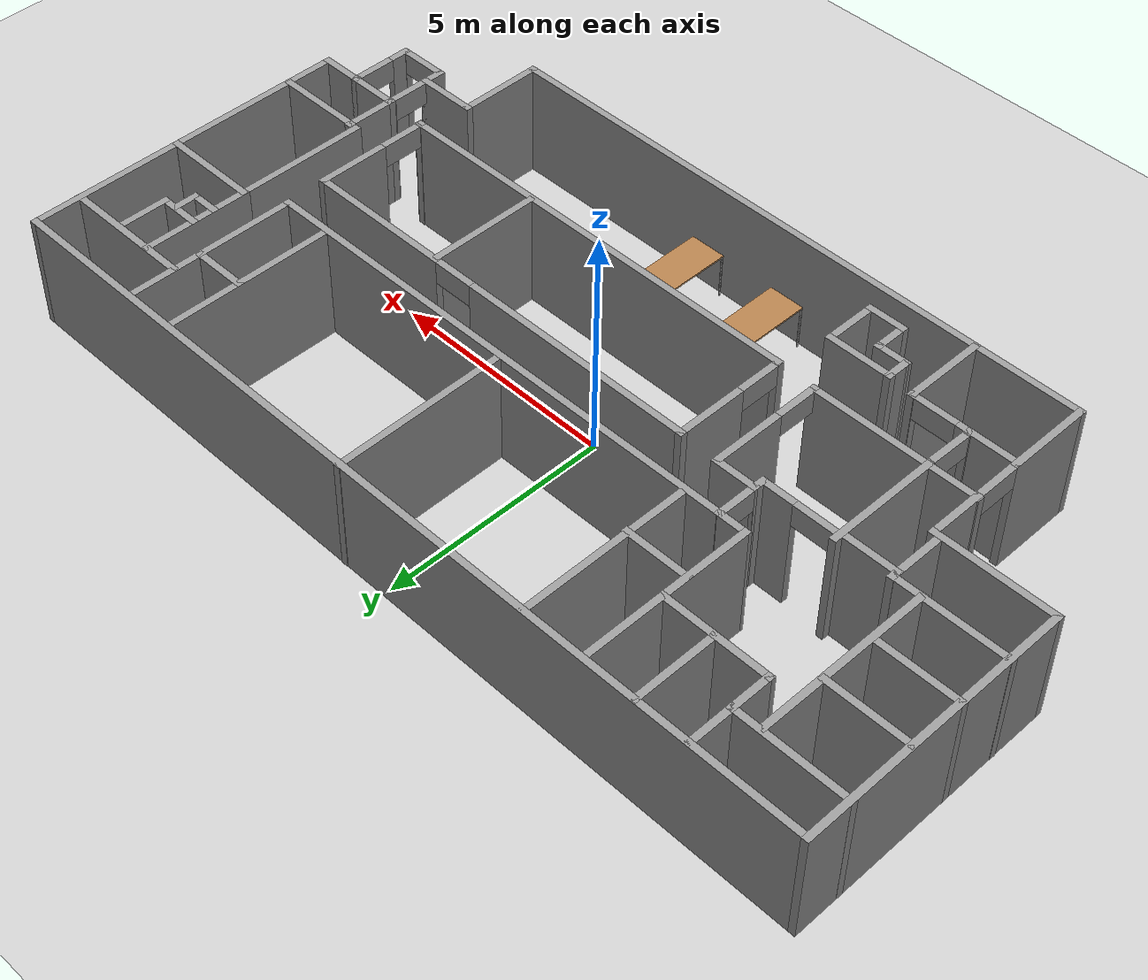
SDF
<sdf version="1.6">
 <world name="default">
  <light name="sun" type="directional">
   <pose>0 0 10 0 -0 0</pose>
   <diffuse>0.8 0.8 0.8 1</diffuse>
   <specular>0.1 0.1 0.1 1</specular>
   <attenuation>
    <range>1000</range>
    <constant>0.9</constant>
    <linear>0.01</linear>
    <quadratic>0.001</quadratic>
   </attenuation>
   <direction>-0.5 0.5 -1</direction>
  </light>
  <model name="ground_plane">
   <static>1</static>
   <link name="link">
    <collision name="collision">
     <geometry><plane><normal>0 0 1</normal><size>100 100</size></plane></geometry>
     <surface><friction><ode><mu>100</mu><mu2>50</mu2></ode></friction></surface>
    </collision>
    <visual name="visual">
     <cast_shadows>0</cast_shadows>
     <geometry><plane><normal>0 0 1</normal><size>100 100</size></plane></geometry>
     <material>
      <script><uri>file://media/materials/scripts/gazebo.material</uri><name>Gazebo/Grey</name></script>
     </material>
    </visual>
   </link>
  </model>
  <gravity>0 0 -9.8</gravity>
  <magnetic_field>6e-06 2.3e-05 -4.2e-05</magnetic_field>
  <atmosphere type="adiabatic"/>
  <physics name="default_physics" default="0" type="ode">
   <max_step_size>0.001</max_step_size>
   <real_time_factor>1</real_time_factor>
   <real_time_update_rate>1000</real_time_update_rate>
  </physics>
  <scene><ambient>0.4 0.4 0.4 1</ambient><background>0.7 0.7 0.7 1</background><shadows>1</shadows></scene>
  <spherical_coordinates>
   <surface_model>EARTH_WGS84</surface_model>
   <latitude_deg>0</latitude_deg>
   <longitude_deg>0</longitude_deg>
   <elevation>0</elevation>
   <heading_deg>0</heading_deg>
  </spherical_coordinates>
  <model name="dehf1">
   <pose>0.161285 0.129327 0 0 -0 0</pose>
   <link name="Wall_100">
    <pose>2.05121 0.314345 0 0 -0 0</pose>
    <visual name="Wall_100_Visual_0">
     <pose>-2.10558 0 1.25 0 -0 0</pose>
     <geometry><box><size>5.29904 0.15 2.5</size></box></geometry>
     <material>
      <script><uri>file://media/materials/scripts/gazebo.material</uri><name>Gazebo/Grey</name></script>
      <ambient>1 1 1 1</ambient>
     </material>
    </visual>
    <collision name="Wall_100_Collision_0">
     <geometry><box><size>5.29904 0.15 2.5</size></box></geometry>
     <pose>-2.10558 0 1.25 0 -0 0</pose>
    </collision>
    <visual name="Wall_100_Visual_1">
     <pose>3.09952 0 1.25 0 -0 0</pose>
     <geometry><box><size>3.31115 0.15 2.5</size></box></geometry>
     <material>
      <script><uri>file://media/materials/scripts/gazebo.material</uri><name>Gazebo/Grey</name></script>
      <ambient>1 1 1 1</ambient>
     </material>
    </visual>
    <collision name="Wall_100_Collision_1">
     <geometry><box><size>3.31115 0.15 2.5</size></box></geometry>
     <pose>3.09952 0 1.25 0 -0 0</pose>
    </collision>
    <visual name="Wall_100_Visual_2">
     <pose>0.993942 0 2.25 0 -0 0</pose>
     <geometry><box><size>0.9 0.15 0.5</size></box></geometry>
     <material>
      <script><uri>file://media/materials/scripts/gazebo.material</uri><name>Gazebo/Grey</name></script>
      <ambient>1 1 1 1</ambient>
     </material>
    </visual>
    <collision name="Wall_100_Collision_2">
     <geometry><box><size>0.9 0.15 0.5</size></box></geometry>
     <pose>0.993942 0 2.25 0 -0 0</pose>
    </collision>
   </link>
   <link name="Wall_102">
    <collision name="Wall_102_Collision">
     <geometry><box><size>2.5 0.15 2.5</size></box></geometry>
     <pose>0 0 1.25 0 -0 0</pose>
    </collision>
    <visual name="Wall_102_Visual">
     <pose>0 0 1.25 0 -0 0</pose>
     <geometry><box><size>2.5 0.15 2.5</size></box></geometry>
     <material>
      <script><uri>file://media/materials/scripts/gazebo.material</uri><name>Gazebo/Grey</name></script>
      <ambient>1 1 1 1</ambient>
     </material>
    </visual>
    <pose>3.59037 -0.931067 0 0 0 -1.5708</pose>
   </link>
   <link name="Wall_104">
    <collision name="Wall_104_Collision">
     <geometry><box><size>11.1951 0.15 2.5</size></box></geometry>
     <pose>0 0 1.25 0 -0 0</pose>
    </collision>
    <visual name="Wall_104_Visual">
     <pose>0 0 1.25 0 -0 0</pose>
     <geometry><box><size>11.1951 0.15 2.5</size></box></geometry>
     <material>
      <script><uri>file://media/materials/scripts/gazebo.material</uri><name>Gazebo/Grey</name></script>
      <ambient>1 1 1 1</ambient>
     </material>
    </visual>
    <pose>1.17465 1.21384 0 0 0 -3.14023</pose>
   </link>
   <link name="Wall_105">
    <pose>-4.34791 0.781331 0 0 0 -1.5708</pose>
    <visual name="Wall_105_Visual_0">
     <pose>-0.432332 0 1.25 0 -0 0</pose>
     <geometry><box><size>0.135337 0.15 2.5</size></box></geometry>
     <material>
      <script><uri>file://media/materials/scripts/gazebo.material</uri><name>Gazebo/Grey</name></script>
      <ambient>1 1 1 1</ambient>
     </material>
    </visual>
    <collision name="Wall_105_Collision_0">
     <geometry><box><size>0.135337 0.15 2.5</size></box></geometry>
     <pose>-0.432332 0 1.25 0 -0 0</pose>
    </collision>
    <visual name="Wall_105_Visual_1">
     <pose>0.428668 0 1.25 0 -0 0</pose>
     <geometry><box><size>0.142663 0.15 2.5</size></box></geometry>
     <material>
      <script><uri>file://media/materials/scripts/gazebo.material</uri><name>Gazebo/Grey</name></script>
      <ambient>1 1 1 1</ambient>
     </material>
    </visual>
    <collision name="Wall_105_Collision_1">
     <geometry><box><size>0.142663 0.15 2.5</size></box></geometry>
     <pose>0.428668 0 1.25 0 -0 0</pose>
    </collision>
    <visual name="Wall_105_Visual_2">
     <pose>-0.003663 0 2.25 0 -0 0</pose>
     <geometry><box><size>0.722 0.15 0.5</size></box></geometry>
     <material>
      <script><uri>file://media/materials/scripts/gazebo.material</uri><name>Gazebo/Grey</name></script>
      <ambient>1 1 1 1</ambient>
     </material>
    </visual>
    <collision name="Wall_105_Collision_2">
     <geometry><box><size>0.722 0.15 0.5</size></box></geometry>
     <pose>-0.003663 0 2.25 0 -0 0</pose>
    </collision>
   </link>
   <link name="Wall_106">
    <collision name="Wall_106_Collision">
     <geometry><box><size>1 0.15 2.5</size></box></geometry>
     <pose>0 0 1.25 0 -0 0</pose>
    </collision>
    <visual name="Wall_106_Visual">
     <pose>0 0 1.25 0 -0 0</pose>
     <geometry><box><size>1 0.15 2.5</size></box></geometry>
     <material>
      <script><uri>file://media/materials/scripts/gazebo.material</uri><name>Gazebo/Grey</name></script>
      <ambient>1 1 1 1</ambient>
     </material>
    </visual>
    <pose>-3.92285 0.356338 0 0 -0 1.7e-05</pose>
   </link>
   <link name="Wall_107">
    <pose>-3.49779 -0.884154 0 0 0 -1.5708</pose>
    <visual name="Wall_107_Visual_0">
     <pose>-0.500256 0 1.25 0 -0 0</pose>
     <geometry><box><size>1.6302 0.15 2.5</size></box></geometry>
     <material>
      <script><uri>file://media/materials/scripts/gazebo.material</uri><name>Gazebo/Grey</name></script>
      <ambient>1 1 1 1</ambient>
     </material>
    </visual>
    <collision name="Wall_107_Collision_0">
     <geometry><box><size>1.6302 0.15 2.5</size></box></geometry>
     <pose>-0.500256 0 1.25 0 -0 0</pose>
    </collision>
    <visual name="Wall_107_Visual_1">
     <pose>1.2651 0 1.25 0 -0 0</pose>
     <geometry><box><size>0.100513 0.15 2.5</size></box></geometry>
     <material>
      <script><uri>file://media/materials/scripts/gazebo.material</uri><name>Gazebo/Grey</name></script>
      <ambient>1 1 1 1</ambient>
     </material>
    </visual>
    <collision name="Wall_107_Collision_1">
     <geometry><box><size>0.100513 0.15 2.5</size></box></geometry>
     <pose>1.2651 0 1.25 0 -0 0</pose>
    </collision>
    <visual name="Wall_107_Visual_2">
     <pose>0.764846 0 2.25 0 -0 0</pose>
     <geometry><box><size>0.9 0.15 0.5</size></box></geometry>
     <material>
      <script><uri>file://media/materials/scripts/gazebo.material</uri><name>Gazebo/Grey</name></script>
      <ambient>1 1 1 1</ambient>
     </material>
    </visual>
    <collision name="Wall_107_Collision_2">
     <geometry><box><size>0.9 0.15 0.5</size></box></geometry>
     <pose>0.764846 0 2.25 0 -0 0</pose>
    </collision>
   </link>
   <link name="Wall_108">
    <collision name="Wall_108_Collision">
     <geometry><box><size>3.73782 0.15 2.5</size></box></geometry>
     <pose>0 0 1.25 0 -0 0</pose>
    </collision>
    <visual name="Wall_108_Visual">
     <pose>0 0 1.25 0 -0 0</pose>
     <geometry><box><size>3.73782 0.15 2.5</size></box></geometry>
     <material>
      <script><uri>file://media/materials/scripts/gazebo.material</uri><name>Gazebo/Grey</name></script>
      <ambient>1 1 1 1</ambient>
     </material>
    </visual>
    <pose>-5.29179 -2.12466 0 0 -0 3.14159</pose>
   </link>
   <link name="Wall_111">
    <collision name="Wall_111_Collision">
     <geometry><box><size>1.35149 0.15 2.5</size></box></geometry>
     <pose>0 0 1.25 0 -0 0</pose>
    </collision>
    <visual name="Wall_111_Visual">
     <pose>0 0 1.25 0 -0 0</pose>
     <geometry><box><size>1.35149 0.15 2.5</size></box></geometry>
     <material>
      <script><uri>file://media/materials/scripts/gazebo.material</uri><name>Gazebo/Grey</name></script>
      <ambient>1 1 1 1</ambient>
     </material>
    </visual>
    <pose>-7.20716 -0.382984 0 0 -0 1.5708</pose>
   </link>
   <link name="Wall_114">
    <collision name="Wall_114_Collision">
     <geometry><box><size>1.27555 0.15 2.5</size></box></geometry>
     <pose>0 0 1.25 0 -0 0</pose>
    </collision>
    <visual name="Wall_114_Visual">
     <pose>0 0 1.25 0 -0 0</pose>
     <geometry><box><size>1.27555 0.15 2.5</size></box></geometry>
     <material>
      <script><uri>file://media/materials/scripts/gazebo.material</uri><name>Gazebo/Grey</name></script>
      <ambient>1 1 1 1</ambient>
     </material>
    </visual>
    <pose>-6.62922 0.096092 0 0 -0 0</pose>
   </link>
   <link name="Wall_116">
    <collision name="Wall_116_Collision">
     <geometry><box><size>2.53262 0.15 2.5</size></box></geometry>
     <pose>0 0 1.25 0 -0 0</pose>
    </collision>
    <visual name="Wall_116_Visual">
     <pose>0 0 1.25 0 -0 0</pose>
     <geometry><box><size>2.53262 0.15 2.5</size></box></geometry>
     <material>
      <script><uri>file://media/materials/scripts/gazebo.material</uri><name>Gazebo/Grey</name></script>
      <ambient>1 1 1 1</ambient>
     </material>
    </visual>
    <pose>-6.02829 -0.936154 0 0 0 -1.5708</pose>
   </link>
   <link name="Wall_118">
    <collision name="Wall_118_Collision">
     <geometry><box><size>0.364454 0.15 2.5</size></box></geometry>
     <pose>0 0 1.25 0 -0 0</pose>
    </collision>
    <visual name="Wall_118_Visual">
     <pose>0 0 1.25 0 -0 0</pose>
     <geometry><box><size>0.364454 0.15 2.5</size></box></geometry>
     <material>
      <script><uri>file://media/materials/scripts/gazebo.material</uri><name>Gazebo/Grey</name></script>
      <ambient>1 1 1 1</ambient>
     </material>
    </visual>
    <pose>-4.35035 0.249338 0 0 0 -1.59361</pose>
   </link>
   <link name="Wall_119">
    <pose>-5.18779 0.142346 0 0 -0 3.14159</pose>
    <visual name="Wall_119_Visual_0">
     <pose>-0.514859 0 1.25 0 -0 0</pose>
     <geometry><box><size>0.79005 0.15 2.5</size></box></geometry>
     <material>
      <script><uri>file://media/materials/scripts/gazebo.material</uri><name>Gazebo/Grey</name></script>
      <ambient>1 1 1 1</ambient>
     </material>
    </visual>
    <collision name="Wall_119_Collision_0">
     <geometry><box><size>0.79005 0.15 2.5</size></box></geometry>
     <pose>-0.514859 0 1.25 0 -0 0</pose>
    </collision>
    <visual name="Wall_119_Visual_1">
     <pose>0.845025 0 1.25 0 -0 0</pose>
     <geometry><box><size>0.129719 0.15 2.5</size></box></geometry>
     <material>
      <script><uri>file://media/materials/scripts/gazebo.material</uri><name>Gazebo/Grey</name></script>
      <ambient>1 1 1 1</ambient>
     </material>
    </visual>
    <collision name="Wall_119_Collision_1">
     <geometry><box><size>0.129719 0.15 2.5</size></box></geometry>
     <pose>0.845025 0 1.25 0 -0 0</pose>
    </collision>
    <visual name="Wall_119_Visual_2">
     <pose>0.330166 0 2.25 0 -0 0</pose>
     <geometry><box><size>0.9 0.15 0.5</size></box></geometry>
     <material>
      <script><uri>file://media/materials/scripts/gazebo.material</uri><name>Gazebo/Grey</name></script>
      <ambient>1 1 1 1</ambient>
     </material>
    </visual>
    <collision name="Wall_119_Collision_2">
     <geometry><box><size>0.9 0.15 0.5</size></box></geometry>
     <pose>0.330166 0 2.25 0 -0 0</pose>
    </collision>
   </link>
   <link name="Wall_121">
    <pose>-5.91829 -3.23865 0 0 -0 0</pose>
    <visual name="Wall_121_Visual_0">
     <pose>-0.531984 0 1.25 0 -0 0</pose>
     <geometry><box><size>1.36077 0.15 2.5</size></box></geometry>
     <material>
      <script><uri>file://media/materials/scripts/gazebo.material</uri><name>Gazebo/Grey</name></script>
      <ambient>1 1 1 1</ambient>
     </material>
    </visual>
    <collision name="Wall_121_Collision_0">
     <geometry><box><size>1.36077 0.15 2.5</size></box></geometry>
     <pose>-0.531984 0 1.25 0 -0 0</pose>
    </collision>
    <visual name="Wall_121_Visual_1">
     <pose>1.13038 0 1.25 0 -0 0</pose>
     <geometry><box><size>0.163969 0.15 2.5</size></box></geometry>
     <material>
      <script><uri>file://media/materials/scripts/gazebo.material</uri><name>Gazebo/Grey</name></script>
      <ambient>1 1 1 1</ambient>
     </material>
    </visual>
    <collision name="Wall_121_Collision_1">
     <geometry><box><size>0.163969 0.15 2.5</size></box></geometry>
     <pose>1.13038 0 1.25 0 -0 0</pose>
    </collision>
    <visual name="Wall_121_Visual_2">
     <pose>0.598401 0 2.25 0 -0 0</pose>
     <geometry><box><size>0.9 0.15 0.5</size></box></geometry>
     <material>
      <script><uri>file://media/materials/scripts/gazebo.material</uri><name>Gazebo/Grey</name></script>
      <ambient>1 1 1 1</ambient>
     </material>
    </visual>
    <collision name="Wall_121_Collision_2">
     <geometry><box><size>0.9 0.15 0.5</size></box></geometry>
     <pose>0.598401 0 2.25 0 -0 0</pose>
    </collision>
   </link>
   <link name="Wall_125">
    <collision name="Wall_125_Collision">
     <geometry><box><size>3.87614 0.15 2.5</size></box></geometry>
     <pose>0 0 1.25 0 -0 0</pose>
    </collision>
    <visual name="Wall_125_Visual">
     <pose>0 0 1.25 0 -0 0</pose>
     <geometry><box><size>3.87614 0.15 2.5</size></box></geometry>
     <material>
      <script><uri>file://media/materials/scripts/gazebo.material</uri><name>Gazebo/Grey</name></script>
      <ambient>1 1 1 1</ambient>
     </material>
    </visual>
    <pose>5.57066 3.09198 0 0 0 -1.5708</pose>
   </link>
   <link name="Wall_127">
    <collision name="Wall_127_Collision">
     <geometry><box><size>3.86097 0.15 2.5</size></box></geometry>
     <pose>0 0 1.25 0 -0 0</pose>
    </collision>
    <visual name="Wall_127_Visual">
     <pose>0 0 1.25 0 -0 0</pose>
     <geometry><box><size>3.86097 0.15 2.5</size></box></geometry>
     <material>
      <script><uri>file://media/materials/scripts/gazebo.material</uri><name>Gazebo/Grey</name></script>
      <ambient>1 1 1 1</ambient>
     </material>
    </visual>
    <pose>-3.585 3.06917 0 0 0 -1.5708</pose>
   </link>
   <link name="Wall_131">
    <collision name="Wall_131_Collision">
     <geometry><box><size>3.91145 0.15 2.5</size></box></geometry>
     <pose>0 0 1.25 0 -0 0</pose>
    </collision>
    <visual name="Wall_131_Visual">
     <pose>0 0 1.25 0 -0 0</pose>
     <geometry><box><size>3.91145 0.15 2.5</size></box></geometry>
     <material>
      <script><uri>file://media/materials/scripts/gazebo.material</uri><name>Gazebo/Grey</name></script>
      <ambient>1 1 1 1</ambient>
     </material>
    </visual>
    <pose>0.869731 3.1003 0 0 0 -1.5601</pose>
   </link>
   <link name="Wall_134">
    <collision name="Wall_134_Collision">
     <geometry><box><size>1.85744 0.15 2.5</size></box></geometry>
     <pose>0 0 1.25 0 -0 0</pose>
    </collision>
    <visual name="Wall_134_Visual">
     <pose>0 0 1.25 0 -0 0</pose>
     <geometry><box><size>1.85744 0.15 2.5</size></box></geometry>
     <material>
      <script><uri>file://media/materials/scripts/gazebo.material</uri><name>Gazebo/Grey</name></script>
      <ambient>1 1 1 1</ambient>
     </material>
    </visual>
    <pose>-4.78079 -4.09215 0 0 0 -1.5708</pose>
   </link>
   <link name="Wall_136">
    <pose>-6.02829 -2.67766 0 0 0 -1.5917</pose>
    <visual name="Wall_136_Visual_0">
     <pose>-0.534639 0 1.25 0 -0 0</pose>
     <geometry><box><size>0.180723 0.15 2.5</size></box></geometry>
     <material>
      <script><uri>file://media/materials/scripts/gazebo.material</uri><name>Gazebo/Grey</name></script>
      <ambient>1 1 1 1</ambient>
     </material>
    </visual>
    <collision name="Wall_136_Collision_0">
     <geometry><box><size>0.180723 0.15 2.5</size></box></geometry>
     <pose>-0.534639 0 1.25 0 -0 0</pose>
    </collision>
    <visual name="Wall_136_Visual_1">
     <pose>0.540361 0 1.25 0 -0 0</pose>
     <geometry><box><size>0.169277 0.15 2.5</size></box></geometry>
     <material>
      <script><uri>file://media/materials/scripts/gazebo.material</uri><name>Gazebo/Grey</name></script>
      <ambient>1 1 1 1</ambient>
     </material>
    </visual>
    <collision name="Wall_136_Collision_1">
     <geometry><box><size>0.169277 0.15 2.5</size></box></geometry>
     <pose>0.540361 0 1.25 0 -0 0</pose>
    </collision>
    <visual name="Wall_136_Visual_2">
     <pose>0.005723 0 2.25 0 -0 0</pose>
     <geometry><box><size>0.9 0.15 0.5</size></box></geometry>
     <material>
      <script><uri>file://media/materials/scripts/gazebo.material</uri><name>Gazebo/Grey</name></script>
      <ambient>1 1 1 1</ambient>
     </material>
    </visual>
    <collision name="Wall_136_Collision_2">
     <geometry><box><size>0.9 0.15 0.5</size></box></geometry>
     <pose>0.005723 0 2.25 0 -0 0</pose>
    </collision>
   </link>
   <link name="Wall_138">
    <pose>6.73121 -0.9274 0 0 0 -1.5708</pose>
    <visual name="Wall_138_Visual_0">
     <pose>-0.529769 0 1.25 0 -0 0</pose>
     <geometry><box><size>1.5742 0.15 2.5</size></box></geometry>
     <material>
      <script><uri>file://media/materials/scripts/gazebo.material</uri><name>Gazebo/Grey</name></script>
      <ambient>1 1 1 1</ambient>
     </material>
    </visual>
    <collision name="Wall_138_Collision_0">
     <geometry><box><size>1.5742 0.15 2.5</size></box></geometry>
     <pose>-0.529769 0 1.25 0 -0 0</pose>
    </collision>
    <visual name="Wall_138_Visual_1">
     <pose>1.2371 0 1.25 0 -0 0</pose>
     <geometry><box><size>0.159537 0.15 2.5</size></box></geometry>
     <material>
      <script><uri>file://media/materials/scripts/gazebo.material</uri><name>Gazebo/Grey</name></script>
      <ambient>1 1 1 1</ambient>
     </material>
    </visual>
    <collision name="Wall_138_Collision_1">
     <geometry><box><size>0.159537 0.15 2.5</size></box></geometry>
     <pose>1.2371 0 1.25 0 -0 0</pose>
    </collision>
    <visual name="Wall_138_Visual_2">
     <pose>0.707331 0 2.25 0 -0 0</pose>
     <geometry><box><size>0.9 0.15 0.5</size></box></geometry>
     <material>
      <script><uri>file://media/materials/scripts/gazebo.material</uri><name>Gazebo/Grey</name></script>
      <ambient>1 1 1 1</ambient>
     </material>
    </visual>
    <collision name="Wall_138_Collision_2">
     <geometry><box><size>0.9 0.15 0.5</size></box></geometry>
     <pose>0.707331 0 2.25 0 -0 0</pose>
    </collision>
   </link>
   <link name="Wall_140">
    <collision name="Wall_140_Collision">
     <geometry><box><size>3.88549 0.15 2.5</size></box></geometry>
     <pose>0 0 1.25 0 -0 0</pose>
    </collision>
    <visual name="Wall_140_Visual">
     <pose>0 0 1.25 0 -0 0</pose>
     <geometry><box><size>3.88549 0.15 2.5</size></box></geometry>
     <material>
      <script><uri>file://media/materials/scripts/gazebo.material</uri><name>Gazebo/Grey</name></script>
      <ambient>1 1 1 1</ambient>
     </material>
    </visual>
    <pose>6.69721 3.08934 0 0 -0 1.5708</pose>
   </link>
   <link name="Wall_142">
    <collision name="Wall_142_Collision">
     <geometry><box><size>1.25 0.15 2.5</size></box></geometry>
     <pose>0 0 1.25 0 -0 0</pose>
    </collision>
    <visual name="Wall_142_Visual">
     <pose>0 0 1.25 0 -0 0</pose>
     <geometry><box><size>1.25 0.15 2.5</size></box></geometry>
     <material>
      <script><uri>file://media/materials/scripts/gazebo.material</uri><name>Gazebo/Grey</name></script>
      <ambient>1 1 1 1</ambient>
     </material>
    </visual>
    <pose>6.12393 3.3355 0 0 -0 0</pose>
   </link>
   <link name="Wall_144">
    <collision name="Wall_144_Collision">
     <geometry><box><size>3 0.15 2.5</size></box></geometry>
     <pose>0 0 1.25 0 -0 0</pose>
    </collision>
    <visual name="Wall_144_Visual">
     <pose>0 0 1.25 0 -0 0</pose>
     <geometry><box><size>3 0.15 2.5</size></box></geometry>
     <material>
      <script><uri>file://media/materials/scripts/gazebo.material</uri><name>Gazebo/Grey</name></script>
      <ambient>1 1 1 1</ambient>
     </material>
    </visual>
    <pose>8.14893 3.945 0 0 -0 0</pose>
   </link>
   <link name="Wall_146">
    <collision name="Wall_146_Collision">
     <geometry><box><size>2.43972 0.15 2.5</size></box></geometry>
     <pose>0 0 1.25 0 -0 0</pose>
    </collision>
    <visual name="Wall_146_Visual">
     <pose>0 0 1.25 0 -0 0</pose>
     <geometry><box><size>2.43972 0.15 2.5</size></box></geometry>
     <material>
      <script><uri>file://media/materials/scripts/gazebo.material</uri><name>Gazebo/Grey</name></script>
      <ambient>1 1 1 1</ambient>
     </material>
    </visual>
    <pose>7.51721 2.77734 0 0 0 -1.5708</pose>
   </link>
   <link name="Wall_148">
    <collision name="Wall_148_Collision">
     <geometry><box><size>1 0.15 2.5</size></box></geometry>
     <pose>0 0 1.25 0 -0 0</pose>
    </collision>
    <visual name="Wall_148_Visual">
     <pose>0 0 1.25 0 -0 0</pose>
     <geometry><box><size>1 0.15 2.5</size></box></geometry>
     <material>
      <script><uri>file://media/materials/scripts/gazebo.material</uri><name>Gazebo/Grey</name></script>
      <ambient>1 1 1 1</ambient>
     </material>
    </visual>
    <pose>7.94243 2.8525 0 0 -0 0</pose>
   </link>
   <link name="Wall_149">
    <collision name="Wall_149_Collision">
     <geometry><box><size>1.20823 0.15 2.5</size></box></geometry>
     <pose>0 0 1.25 0 -0 0</pose>
    </collision>
    <visual name="Wall_149_Visual">
     <pose>0 0 1.25 0 -0 0</pose>
     <geometry><box><size>1.20823 0.15 2.5</size></box></geometry>
     <material>
      <script><uri>file://media/materials/scripts/gazebo.material</uri><name>Gazebo/Grey</name></script>
      <ambient>1 1 1 1</ambient>
     </material>
    </visual>
    <pose>8.36793 3.3815 0 0 -0 1.56985</pose>
   </link>
   <link name="Wall_151">
    <collision name="Wall_151_Collision">
     <geometry><box><size>0.598792 0.15 2.5</size></box></geometry>
     <pose>0 0 1.25 0 -0 0</pose>
    </collision>
    <visual name="Wall_151_Visual">
     <pose>0 0 1.25 0 -0 0</pose>
     <geometry><box><size>0.598792 0.15 2.5</size></box></geometry>
     <material>
      <script><uri>file://media/materials/scripts/gazebo.material</uri><name>Gazebo/Grey</name></script>
      <ambient>1 1 1 1</ambient>
     </material>
    </visual>
    <pose>8.06921 2.59384 0 0 0 -1.5708</pose>
   </link>
   <link name="Wall_152">
    <collision name="Wall_152_Collision">
     <geometry><box><size>0.701779 0.15 2.5</size></box></geometry>
     <pose>0 0 1.25 0 -0 0</pose>
    </collision>
    <visual name="Wall_152_Visual">
     <pose>0 0 1.25 0 -0 0</pose>
     <geometry><box><size>0.701779 0.15 2.5</size></box></geometry>
     <material>
      <script><uri>file://media/materials/scripts/gazebo.material</uri><name>Gazebo/Grey</name></script>
      <ambient>1 1 1 1</ambient>
     </material>
    </visual>
    <pose>7.79321 2.36935 0 0 -0 3.14159</pose>
   </link>
   <link name="Wall_154">
    <collision name="Wall_154_Collision">
     <geometry><box><size>2.52225 0.15 2.5</size></box></geometry>
     <pose>0 0 1.25 0 -0 0</pose>
    </collision>
    <visual name="Wall_154_Visual">
     <pose>0 0 1.25 0 -0 0</pose>
     <geometry><box><size>2.52225 0.15 2.5</size></box></geometry>
     <material>
      <script><uri>file://media/materials/scripts/gazebo.material</uri><name>Gazebo/Grey</name></script>
      <ambient>1 1 1 1</ambient>
     </material>
    </visual>
    <pose>-8.38192 4.01549 0 0 0 -0.000123</pose>
   </link>
   <link name="Wall_155">
    <collision name="Wall_155_Collision">
     <geometry><box><size>1.0628 0.15 2.5</size></box></geometry>
     <pose>0 0 1.25 0 -0 0</pose>
    </collision>
    <visual name="Wall_155_Visual">
     <pose>0 0 1.25 0 -0 0</pose>
     <geometry><box><size>1.0628 0.15 2.5</size></box></geometry>
     <material>
      <script><uri>file://media/materials/scripts/gazebo.material</uri><name>Gazebo/Grey</name></script>
      <ambient>1 1 1 1</ambient>
     </material>
    </visual>
    <pose>-7.19579 4.47185 0 0 -0 1.5708</pose>
   </link>
   <link name="Wall_16">
    <pose>8.71421 -2.87915 0 0 0 -1.5708</pose>
    <visual name="Wall_16_Visual_0">
     <pose>-0.657302 0 1.25 0 -0 0</pose>
     <geometry><box><size>0.170397 0.15 2.5</size></box></geometry>
     <material>
      <script><uri>file://media/materials/scripts/gazebo.material</uri><name>Gazebo/Grey</name></script>
      <ambient>1 1 1 1</ambient>
     </material>
    </visual>
    <collision name="Wall_16_Collision_0">
     <geometry><box><size>0.170397 0.15 2.5</size></box></geometry>
     <pose>-0.657302 0 1.25 0 -0 0</pose>
    </collision>
    <visual name="Wall_16_Visual_1">
     <pose>0.500198 0 1.25 0 -0 0</pose>
     <geometry><box><size>0.484603 0.15 2.5</size></box></geometry>
     <material>
      <script><uri>file://media/materials/scripts/gazebo.material</uri><name>Gazebo/Grey</name></script>
      <ambient>1 1 1 1</ambient>
     </material>
    </visual>
    <collision name="Wall_16_Collision_1">
     <geometry><box><size>0.484603 0.15 2.5</size></box></geometry>
     <pose>0.500198 0 1.25 0 -0 0</pose>
    </collision>
    <visual name="Wall_16_Visual_2">
     <pose>-0.157103 0 2.25 0 -0 0</pose>
     <geometry><box><size>0.83 0.15 0.5</size></box></geometry>
     <material>
      <script><uri>file://media/materials/scripts/gazebo.material</uri><name>Gazebo/Grey</name></script>
      <ambient>1 1 1 1</ambient>
     </material>
    </visual>
    <collision name="Wall_16_Collision_2">
     <geometry><box><size>0.83 0.15 0.5</size></box></geometry>
     <pose>-0.157103 0 2.25 0 -0 0</pose>
    </collision>
   </link>
   <link name="Wall_160">
    <collision name="Wall_160_Collision">
     <geometry><box><size>2.5 0.15 2.5</size></box></geometry>
     <pose>0 0 1.25 0 -0 0</pose>
    </collision>
    <visual name="Wall_160_Visual">
     <pose>0 0 1.25 0 -0 0</pose>
     <geometry><box><size>2.5 0.15 2.5</size></box></geometry>
     <material>
      <script><uri>file://media/materials/scripts/gazebo.material</uri><name>Gazebo/Grey</name></script>
      <ambient>1 1 1 1</ambient>
     </material>
    </visual>
    <pose>-8.39893 0.21201 0 0 -0 3.14159</pose>
   </link>
   <link name="Wall_164">
    <collision name="Wall_164_Collision">
     <geometry><box><size>3.90005 0.15 2.5</size></box></geometry>
     <pose>0 0 1.25 0 -0 0</pose>
    </collision>
    <visual name="Wall_164_Visual">
     <pose>0 0 1.25 0 -0 0</pose>
     <geometry><box><size>3.90005 0.15 2.5</size></box></geometry>
     <material>
      <script><uri>file://media/materials/scripts/gazebo.material</uri><name>Gazebo/Grey</name></script>
      <ambient>1 1 1 1</ambient>
     </material>
    </visual>
    <pose>-7.79079 2.07735 0 0 -0 1.56546</pose>
   </link>
   <link name="Wall_166">
    <collision name="Wall_166_Collision">
     <geometry><box><size>1 0.15 2.5</size></box></geometry>
     <pose>0 0 1.25 0 -0 0</pose>
    </collision>
    <visual name="Wall_166_Visual">
     <pose>0 0 1.25 0 -0 0</pose>
     <geometry><box><size>1 0.15 2.5</size></box></geometry>
     <material>
      <script><uri>file://media/materials/scripts/gazebo.material</uri><name>Gazebo/Grey</name></script>
      <ambient>1 1 1 1</ambient>
     </material>
    </visual>
    <pose>-7.19579 3.59035 0 0 0 -1.5708</pose>
   </link>
   <link name="Wall_167">
    <collision name="Wall_167_Collision">
     <geometry><box><size>2.42525 0.15 2.5</size></box></geometry>
     <pose>0 0 1.25 0 -0 0</pose>
    </collision>
    <visual name="Wall_167_Visual">
     <pose>0 0 1.25 0 -0 0</pose>
     <geometry><box><size>2.42525 0.15 2.5</size></box></geometry>
     <material>
      <script><uri>file://media/materials/scripts/gazebo.material</uri><name>Gazebo/Grey</name></script>
      <ambient>1 1 1 1</ambient>
     </material>
    </visual>
    <pose>-6.05829 3.16085 0 0 0 -0.003956</pose>
   </link>
   <link name="Wall_169">
    <collision name="Wall_169_Collision">
     <geometry><box><size>1.9222 0.15 2.5</size></box></geometry>
     <pose>0 0 1.25 0 -0 0</pose>
    </collision>
    <visual name="Wall_169_Visual">
     <pose>0 0 1.25 0 -0 0</pose>
     <geometry><box><size>1.9222 0.15 2.5</size></box></geometry>
     <material>
      <script><uri>file://media/materials/scripts/gazebo.material</uri><name>Gazebo/Grey</name></script>
      <ambient>1 1 1 1</ambient>
     </material>
    </visual>
    <pose>-8.68035 1.42222 0 0 -0 0</pose>
   </link>
   <link name="Wall_17">
    <pose>8.20171 -3.54665 0 0 0 -3.14159</pose>
    <visual name="Wall_17_Visual_0">
     <pose>-0.511029 0 1.25 0 -0 0</pose>
     <geometry><box><size>0.152515 0.15 2.5</size></box></geometry>
     <material>
      <script><uri>file://media/materials/scripts/gazebo.material</uri><name>Gazebo/Grey</name></script>
      <ambient>1 1 1 1</ambient>
     </material>
    </visual>
    <collision name="Wall_17_Collision_0">
     <geometry><box><size>0.152515 0.15 2.5</size></box></geometry>
     <pose>-0.511029 0 1.25 0 -0 0</pose>
    </collision>
    <visual name="Wall_17_Visual_1">
     <pose>0.526258 0 1.25 0 -0 0</pose>
     <geometry><box><size>0.122059 0.15 2.5</size></box></geometry>
     <material>
      <script><uri>file://media/materials/scripts/gazebo.material</uri><name>Gazebo/Grey</name></script>
      <ambient>1 1 1 1</ambient>
     </material>
    </visual>
    <collision name="Wall_17_Collision_1">
     <geometry><box><size>0.122059 0.15 2.5</size></box></geometry>
     <pose>0.526258 0 1.25 0 -0 0</pose>
    </collision>
    <visual name="Wall_17_Visual_2">
     <pose>0.015228 0 2.25 0 -0 0</pose>
     <geometry><box><size>0.9 0.15 0.5</size></box></geometry>
     <material>
      <script><uri>file://media/materials/scripts/gazebo.material</uri><name>Gazebo/Grey</name></script>
      <ambient>1 1 1 1</ambient>
     </material>
    </visual>
    <collision name="Wall_17_Collision_2">
     <geometry><box><size>0.9 0.15 0.5</size></box></geometry>
     <pose>0.015228 0 2.25 0 -0 0</pose>
    </collision>
   </link>
   <link name="Wall_171">
    <collision name="Wall_171_Collision">
     <geometry><box><size>1.8959 0.15 2.5</size></box></geometry>
     <pose>0 0 1.25 0 -0 0</pose>
    </collision>
    <visual name="Wall_171_Visual">
     <pose>0 0 1.25 0 -0 0</pose>
     <geometry><box><size>1.8959 0.15 2.5</size></box></geometry>
     <material>
      <script><uri>file://media/materials/scripts/gazebo.material</uri><name>Gazebo/Grey</name></script>
      <ambient>1 1 1 1</ambient>
     </material>
    </visual>
    <pose>-8.68029 2.58635 0 0 -0 0</pose>
   </link>
   <link name="Wall_173">
    <collision name="Wall_173_Collision">
     <geometry><box><size>1.9222 0.15 2.5</size></box></geometry>
     <pose>0 0 1.25 0 -0 0</pose>
    </collision>
    <visual name="Wall_173_Visual">
     <pose>0 0 1.25 0 -0 0</pose>
     <geometry><box><size>1.9222 0.15 2.5</size></box></geometry>
     <material>
      <script><uri>file://media/materials/scripts/gazebo.material</uri><name>Gazebo/Grey</name></script>
      <ambient>1 1 1 1</ambient>
     </material>
    </visual>
    <pose>-6.04879 4.06735 0 0 0 -1.5708</pose>
   </link>
   <link name="Wall_175">
    <collision name="Wall_175_Collision">
     <geometry><box><size>1.93371 0.15 2.5</size></box></geometry>
     <pose>0 0 1.25 0 -0 0</pose>
    </collision>
    <visual name="Wall_175_Visual">
     <pose>0 0 1.25 0 -0 0</pose>
     <geometry><box><size>1.93371 0.15 2.5</size></box></geometry>
     <material>
      <script><uri>file://media/materials/scripts/gazebo.material</uri><name>Gazebo/Grey</name></script>
      <ambient>1 1 1 1</ambient>
     </material>
    </visual>
    <pose>-4.92079 4.04835 0 0 -0 1.5708</pose>
   </link>
   <link name="Wall_177">
    <collision name="Wall_177_Collision">
     <geometry><box><size>2.09573 0.15 2.5</size></box></geometry>
     <pose>0 0 1.25 0 -0 0</pose>
    </collision>
    <visual name="Wall_177_Visual">
     <pose>0 0 1.25 0 -0 0</pose>
     <geometry><box><size>2.09573 0.15 2.5</size></box></geometry>
     <material>
      <script><uri>file://media/materials/scripts/gazebo.material</uri><name>Gazebo/Grey</name></script>
      <ambient>1 1 1 1</ambient>
     </material>
    </visual>
    <pose>-4.92262 2.18348 0 0 0 -1.57268</pose>
   </link>
   <link name="Wall_178">
    <collision name="Wall_178_Collision">
     <geometry><box><size>0.726557 0.15 2.5</size></box></geometry>
     <pose>0 0 1.25 0 -0 0</pose>
    </collision>
    <visual name="Wall_178_Visual">
     <pose>0 0 1.25 0 -0 0</pose>
     <geometry><box><size>0.726557 0.15 2.5</size></box></geometry>
     <material>
      <script><uri>file://media/materials/scripts/gazebo.material</uri><name>Gazebo/Grey</name></script>
      <ambient>1 1 1 1</ambient>
     </material>
    </visual>
    <pose>-4.63618 1.20848 0 0 0 -0.007442</pose>
   </link>
   <link name="Wall_18">
    <collision name="Wall_18_Collision">
     <geometry><box><size>0.521 0.15 2.5</size></box></geometry>
     <pose>0 0 1.25 0 -0 0</pose>
    </collision>
    <visual name="Wall_18_Visual">
     <pose>0 0 1.25 0 -0 0</pose>
     <geometry><box><size>0.521 0.15 2.5</size></box></geometry>
     <material>
      <script><uri>file://media/materials/scripts/gazebo.material</uri><name>Gazebo/Grey</name></script>
      <ambient>1 1 1 1</ambient>
     </material>
    </visual>
    <pose>7.68921 -3.36115 0 0 -0 1.5708</pose>
   </link>
   <link name="Wall_180">
    <collision name="Wall_180_Collision">
     <geometry><box><size>1.5 0.15 2.5</size></box></geometry>
     <pose>0 0 1.25 0 -0 0</pose>
    </collision>
    <visual name="Wall_180_Visual">
     <pose>0 0 1.25 0 -0 0</pose>
     <geometry><box><size>1.5 0.15 2.5</size></box></geometry>
     <material>
      <script><uri>file://media/materials/scripts/gazebo.material</uri><name>Gazebo/Grey</name></script>
      <ambient>1 1 1 1</ambient>
     </material>
    </visual>
    <pose>-4.23623 2.58602 0 0 -0 0</pose>
   </link>
   <link name="Wall_188">
    <collision name="Wall_188_Collision">
     <geometry><box><size>1.5 0.15 2.5</size></box></geometry>
     <pose>0 0 1.25 0 -0 0</pose>
    </collision>
    <visual name="Wall_188_Visual">
     <pose>0 0 1.25 0 -0 0</pose>
     <geometry><box><size>1.5 0.15 2.5</size></box></geometry>
     <material>
      <script><uri>file://media/materials/scripts/gazebo.material</uri><name>Gazebo/Grey</name></script>
      <ambient>1 1 1 1</ambient>
     </material>
    </visual>
    <pose>-3.52687 -3.31148 0 0 -0 0</pose>
   </link>
   <link name="Wall_189">
    <collision name="Wall_189_Collision">
     <geometry><box><size>1.25 0.15 2.5</size></box></geometry>
     <pose>0 0 1.25 0 -0 0</pose>
    </collision>
    <visual name="Wall_189_Visual">
     <pose>0 0 1.25 0 -0 0</pose>
     <geometry><box><size>1.25 0.15 2.5</size></box></geometry>
     <material>
      <script><uri>file://media/materials/scripts/gazebo.material</uri><name>Gazebo/Grey</name></script>
      <ambient>1 1 1 1</ambient>
     </material>
    </visual>
    <pose>-2.85183 -3.86157 0 0 0 -1.57073</pose>
   </link>
   <link name="Wall_194">
    <collision name="Wall_194_Collision">
     <geometry><box><size>0.599844 0.15 2.5</size></box></geometry>
     <pose>0 0 1.25 0 -0 0</pose>
    </collision>
    <visual name="Wall_194_Visual">
     <pose>0 0 1.25 0 -0 0</pose>
     <geometry><box><size>0.599844 0.15 2.5</size></box></geometry>
     <material>
      <script><uri>file://media/materials/scripts/gazebo.material</uri><name>Gazebo/Grey</name></script>
      <ambient>1 1 1 1</ambient>
     </material>
    </visual>
    <pose>-4.20187 -3.53631 0 0 0 -1.5708</pose>
   </link>
   <link name="Wall_195">
    <collision name="Wall_195_Collision">
     <geometry><box><size>0.758075 0.15 2.5</size></box></geometry>
     <pose>0 0 1.25 0 -0 0</pose>
    </collision>
    <visual name="Wall_195_Visual">
     <pose>0 0 1.25 0 -0 0</pose>
     <geometry><box><size>0.758075 0.15 2.5</size></box></geometry>
     <material>
      <script><uri>file://media/materials/scripts/gazebo.material</uri><name>Gazebo/Grey</name></script>
      <ambient>1 1 1 1</ambient>
     </material>
    </visual>
    <pose>-3.89783 -3.7609 0 0 -0 0.000789</pose>
   </link>
   <link name="Wall_197">
    <collision name="Wall_197_Collision">
     <geometry><box><size>0.80057 0.15 2.5</size></box></geometry>
     <pose>0 0 1.25 0 -0 0</pose>
    </collision>
    <visual name="Wall_197_Visual">
     <pose>0 0 1.25 0 -0 0</pose>
     <geometry><box><size>0.80057 0.15 2.5</size></box></geometry>
     <material>
      <script><uri>file://media/materials/scripts/gazebo.material</uri><name>Gazebo/Grey</name></script>
      <ambient>1 1 1 1</ambient>
     </material>
    </visual>
    <pose>-3.59379 -4.08615 0 0 0 -1.5708</pose>
   </link>
   <link name="Wall_198">
    <collision name="Wall_198_Collision">
     <geometry><box><size>0.89259 0.15 2.5</size></box></geometry>
     <pose>0 0 1.25 0 -0 0</pose>
    </collision>
    <visual name="Wall_198_Visual">
     <pose>0 0 1.25 0 -0 0</pose>
     <geometry><box><size>0.89259 0.15 2.5</size></box></geometry>
     <material>
      <script><uri>file://media/materials/scripts/gazebo.material</uri><name>Gazebo/Grey</name></script>
      <ambient>1 1 1 1</ambient>
     </material>
    </visual>
    <pose>-3.22279 -4.41165 0 0 -0 0</pose>
   </link>
   <link name="Wall_2">
    <collision name="Wall_2_Collision">
     <geometry><box><size>13.685 0.15 2.5</size></box></geometry>
     <pose>0 0 1.25 0 -0 0</pose>
    </collision>
    <visual name="Wall_2_Visual">
     <pose>0 0 1.25 0 -0 0</pose>
     <geometry><box><size>13.685 0.15 2.5</size></box></geometry>
     <material>
      <script><uri>file://media/materials/scripts/gazebo.material</uri><name>Gazebo/Grey</name></script>
      <ambient>1 1 1 1</ambient>
     </material>
    </visual>
    <pose>-0.292293 -4.98165 0 0 -0 0</pose>
   </link>
   <link name="Wall_204">
    <collision name="Wall_204_Collision">
     <geometry><box><size>2.94536 0.15 2.5</size></box></geometry>
     <pose>0 0 1.25 0 -0 0</pose>
    </collision>
    <visual name="Wall_204_Visual">
     <pose>0 0 1.25 0 -0 0</pose>
     <geometry><box><size>2.94536 0.15 2.5</size></box></geometry>
     <material>
      <script><uri>file://media/materials/scripts/gazebo.material</uri><name>Gazebo/Grey</name></script>
      <ambient>1 1 1 1</ambient>
     </material>
    </visual>
    <pose>7.51721 0.234846 0 0 0 -1.5708</pose>
   </link>
   <link name="Wall_21">
    <collision name="Wall_21_Collision">
     <geometry><box><size>1.95576 0.15 2.5</size></box></geometry>
     <pose>0 0 1.25 0 -0 0</pose>
    </collision>
    <visual name="Wall_21_Visual">
     <pose>0 0 1.25 0 -0 0</pose>
     <geometry><box><size>1.95576 0.15 2.5</size></box></geometry>
     <material>
      <script><uri>file://media/materials/scripts/gazebo.material</uri><name>Gazebo/Grey</name></script>
      <ambient>1 1 1 1</ambient>
     </material>
    </visual>
    <pose>6.47521 -4.07866 0 0 -0 1.5708</pose>
   </link>
   <link name="Wall_23">
    <collision name="Wall_23_Collision">
     <geometry><box><size>1.36454 0.15 2.5</size></box></geometry>
     <pose>0 0 1.25 0 -0 0</pose>
    </collision>
    <visual name="Wall_23_Visual">
     <pose>0 0 1.25 0 -0 0</pose>
     <geometry><box><size>1.36454 0.15 2.5</size></box></geometry>
     <material>
      <script><uri>file://media/materials/scripts/gazebo.material</uri><name>Gazebo/Grey</name></script>
      <ambient>1 1 1 1</ambient>
     </material>
    </visual>
    <pose>7.08221 -3.17565 0 0 -0 0</pose>
   </link>
   <link name="Wall_25">
    <pose>7.68921 -2.69365 0 0 -0 1.5708</pose>
    <visual name="Wall_25_Visual_0">
     <pose>-0.497979 0 1.25 0 -0 0</pose>
     <geometry><box><size>0.118269 0.15 2.5</size></box></geometry>
     <material>
      <script><uri>file://media/materials/scripts/gazebo.material</uri><name>Gazebo/Grey</name></script>
      <ambient>1 1 1 1</ambient>
     </material>
    </visual>
    <collision name="Wall_25_Collision_0">
     <geometry><box><size>0.118269 0.15 2.5</size></box></geometry>
     <pose>-0.497979 0 1.25 0 -0 0</pose>
    </collision>
    <visual name="Wall_25_Visual_1">
     <pose>0.474635 0 1.25 0 -0 0</pose>
     <geometry><box><size>0.164957 0.15 2.5</size></box></geometry>
     <material>
      <script><uri>file://media/materials/scripts/gazebo.material</uri><name>Gazebo/Grey</name></script>
      <ambient>1 1 1 1</ambient>
     </material>
    </visual>
    <collision name="Wall_25_Collision_1">
     <geometry><box><size>0.164957 0.15 2.5</size></box></geometry>
     <pose>0.474635 0 1.25 0 -0 0</pose>
    </collision>
    <visual name="Wall_25_Visual_2">
     <pose>-0.023344 0 2.25 0 -0 0</pose>
     <geometry><box><size>0.831 0.15 0.5</size></box></geometry>
     <material>
      <script><uri>file://media/materials/scripts/gazebo.material</uri><name>Gazebo/Grey</name></script>
      <ambient>1 1 1 1</ambient>
     </material>
    </visual>
    <collision name="Wall_25_Collision_2">
     <geometry><box><size>0.831 0.15 0.5</size></box></geometry>
     <pose>-0.023344 0 2.25 0 -0 0</pose>
    </collision>
   </link>
   <link name="Wall_26">
    <collision name="Wall_26_Collision">
     <geometry><box><size>1.17511 0.15 2.5</size></box></geometry>
     <pose>0 0 1.25 0 -0 0</pose>
    </collision>
    <visual name="Wall_26_Visual">
     <pose>0 0 1.25 0 -0 0</pose>
     <geometry><box><size>1.17511 0.15 2.5</size></box></geometry>
     <material>
      <script><uri>file://media/materials/scripts/gazebo.material</uri><name>Gazebo/Grey</name></script>
      <ambient>1 1 1 1</ambient>
     </material>
    </visual>
    <pose>8.20171 -2.21165 0 0 -0 0</pose>
   </link>
   <link name="Wall_28">
    <collision name="Wall_28_Collision">
     <geometry><box><size>1 0.15 2.5</size></box></geometry>
     <pose>0 0 1.25 0 -0 0</pose>
    </collision>
    <visual name="Wall_28_Visual">
     <pose>0 0 1.25 0 -0 0</pose>
     <geometry><box><size>1 0.15 2.5</size></box></geometry>
     <material>
      <script><uri>file://media/materials/scripts/gazebo.material</uri><name>Gazebo/Grey</name></script>
      <ambient>1 1 1 1</ambient>
     </material>
    </visual>
    <pose>9.13921 -2.21165 0 0 -0 0</pose>
   </link>
   <link name="Wall_30">
    <collision name="Wall_30_Collision">
     <geometry><box><size>7.331 0.15 2.5</size></box></geometry>
     <pose>0 0 1.25 0 -0 0</pose>
    </collision>
    <visual name="Wall_30_Visual">
     <pose>0 0 1.25 0 -0 0</pose>
     <geometry><box><size>7.331 0.15 2.5</size></box></geometry>
     <material>
      <script><uri>file://media/materials/scripts/gazebo.material</uri><name>Gazebo/Grey</name></script>
      <ambient>1 1 1 1</ambient>
     </material>
    </visual>
    <pose>9.56421 1.37885 0 0 -0 1.5708</pose>
   </link>
   <link name="Wall_32">
    <collision name="Wall_32_Collision">
     <geometry><box><size>1.19498 0.15 2.5</size></box></geometry>
     <pose>0 0 1.25 0 -0 0</pose>
    </collision>
    <visual name="Wall_32_Visual">
     <pose>0 0 1.25 0 -0 0</pose>
     <geometry><box><size>1.19498 0.15 2.5</size></box></geometry>
     <material>
      <script><uri>file://media/materials/scripts/gazebo.material</uri><name>Gazebo/Grey</name></script>
      <ambient>1 1 1 1</ambient>
     </material>
    </visual>
    <pose>7.68921 -1.68915 0 0 -0 1.5708</pose>
   </link>
   <link name="Wall_34">
    <collision name="Wall_34_Collision">
     <geometry><box><size>0.25 0.15 2.5</size></box></geometry>
     <pose>0 0 1.25 0 -0 0</pose>
    </collision>
    <visual name="Wall_34_Visual">
     <pose>0 0 1.25 0 -0 0</pose>
     <geometry><box><size>0.25 0.15 2.5</size></box></geometry>
     <material>
      <script><uri>file://media/materials/scripts/gazebo.material</uri><name>Gazebo/Grey</name></script>
      <ambient>1 1 1 1</ambient>
     </material>
    </visual>
    <pose>7.63921 -1.16665 0 0 -0 3.14159</pose>
   </link>
   <link name="Wall_40">
    <collision name="Wall_40_Collision">
     <geometry><box><size>2 0.15 2.5</size></box></geometry>
     <pose>0 0 1.25 0 -0 0</pose>
    </collision>
    <visual name="Wall_40_Visual">
     <pose>0 0 1.25 0 -0 0</pose>
     <geometry><box><size>2 0.15 2.5</size></box></geometry>
     <material>
      <script><uri>file://media/materials/scripts/gazebo.material</uri><name>Gazebo/Grey</name></script>
      <ambient>1 1 1 1</ambient>
     </material>
    </visual>
    <pose>8.6112 -1.1834 0 0 -0 0</pose>
   </link>
   <link name="Wall_5">
    <pose>-7.05979 -2.99565 0 0 -0 1.5708</pose>
    <visual name="Wall_5_Visual_0">
     <pose>-1.09383 0 1.25 0 -0 0</pose>
     <geometry><box><size>1.93446 0.15 2.5</size></box></geometry>
     <material>
      <script><uri>file://media/materials/scripts/gazebo.material</uri><name>Gazebo/Grey</name></script>
      <ambient>1 1 1 1</ambient>
     </material>
    </visual>
    <collision name="Wall_5_Collision_0">
     <geometry><box><size>1.93446 0.15 2.5</size></box></geometry>
     <pose>-1.09383 0 1.25 0 -0 0</pose>
    </collision>
    <visual name="Wall_5_Visual_1">
     <pose>1.41723 0 1.25 0 -0 0</pose>
     <geometry><box><size>1.28767 0.15 2.5</size></box></geometry>
     <material>
      <script><uri>file://media/materials/scripts/gazebo.material</uri><name>Gazebo/Grey</name></script>
      <ambient>1 1 1 1</ambient>
     </material>
    </visual>
    <collision name="Wall_5_Collision_1">
     <geometry><box><size>1.28767 0.15 2.5</size></box></geometry>
     <pose>1.41723 0 1.25 0 -0 0</pose>
    </collision>
    <visual name="Wall_5_Visual_2">
     <pose>0.323397 0 2.25 0 -0 0</pose>
     <geometry><box><size>0.9 0.15 0.5</size></box></geometry>
     <material>
      <script><uri>file://media/materials/scripts/gazebo.material</uri><name>Gazebo/Grey</name></script>
      <ambient>1 1 1 1</ambient>
     </material>
    </visual>
    <collision name="Wall_5_Collision_2">
     <geometry><box><size>0.9 0.15 0.5</size></box></geometry>
     <pose>0.323397 0 2.25 0 -0 0</pose>
    </collision>
   </link>
   <link name="Wall_55">
    <collision name="Wall_55_Collision">
     <geometry><box><size>2.17648 0.15 2.5</size></box></geometry>
     <pose>0 0 1.25 0 -0 0</pose>
    </collision>
    <visual name="Wall_55_Visual">
     <pose>0 0 1.25 0 -0 0</pose>
     <geometry><box><size>2.17648 0.15 2.5</size></box></geometry>
     <material>
      <script><uri>file://media/materials/scripts/gazebo.material</uri><name>Gazebo/Grey</name></script>
      <ambient>1 1 1 1</ambient>
     </material>
    </visual>
    <pose>8.54391 1.64129 0 0 0 -0.003731</pose>
   </link>
   <link name="Wall_6">
    <collision name="Wall_6_Collision">
     <geometry><box><size>2.656 0.15 2.5</size></box></geometry>
     <pose>0 0 1.25 0 -0 0</pose>
    </collision>
    <visual name="Wall_6_Visual">
     <pose>0 0 1.25 0 -0 0</pose>
     <geometry><box><size>2.656 0.15 2.5</size></box></geometry>
     <material>
      <script><uri>file://media/materials/scripts/gazebo.material</uri><name>Gazebo/Grey</name></script>
      <ambient>1 1 1 1</ambient>
     </material>
    </visual>
    <pose>-8.31279 -1.00965 0 0 -0 3.14159</pose>
   </link>
   <link name="Wall_8">
    <collision name="Wall_8_Collision">
     <geometry><box><size>6.12908 0.15 2.5</size></box></geometry>
     <pose>0 0 1.25 0 -0 0</pose>
    </collision>
    <visual name="Wall_8_Visual">
     <pose>0 0 1.25 0 -0 0</pose>
     <geometry><box><size>6.12908 0.15 2.5</size></box></geometry>
     <material>
      <script><uri>file://media/materials/scripts/gazebo.material</uri><name>Gazebo/Grey</name></script>
      <ambient>1 1 1 1</ambient>
     </material>
    </visual>
    <pose>-9.56579 1.97985 0 0 -0 1.5708</pose>
   </link>
   <link name="Wall_9">
    <collision name="Wall_9_Collision">
     <geometry><box><size>19.28 0.15 2.5</size></box></geometry>
     <pose>0 0 1.25 0 -0 0</pose>
    </collision>
    <visual name="Wall_9_Visual">
     <pose>0 0 1.25 0 -0 0</pose>
     <geometry><box><size>19.28 0.15 2.5</size></box></geometry>
     <material>
      <script><uri>file://media/materials/scripts/gazebo.material</uri><name>Gazebo/Grey</name></script>
      <ambient>1 1 1 1</ambient>
     </material>
    </visual>
    <pose>-0.000793 4.96934 0 0 -0 0</pose>
   </link>
   <link name="Wall_98">
    <collision name="Wall_98_Collision">
     <geometry><box><size>9.51 0.15 2.5</size></box></geometry>
     <pose>0 0 1.25 0 -0 0</pose>
    </collision>
    <visual name="Wall_98_Visual">
     <pose>0 0 1.25 0 -0 0</pose>
     <geometry><box><size>9.51 0.15 2.5</size></box></geometry>
     <material>
      <script><uri>file://media/materials/scripts/gazebo.material</uri><name>Gazebo/Grey</name></script>
      <ambient>1 1 1 1</ambient>
     </material>
    </visual>
    <pose>2.0687 -2.16914 0 0 -0 3.14159</pose>
   </link>
   <link name="Wall_99">
    <pose>-2.62879 -0.9274 0 0 -0 1.5708</pose>
    <visual name="Wall_99_Visual_0">
     <pose>-1.23806 0 1.25 0 -0 0</pose>
     <geometry><box><size>0.157614 0.15 2.5</size></box></geometry>
     <material>
      <script><uri>file://media/materials/scripts/gazebo.material</uri><name>Gazebo/Grey</name></script>
      <ambient>1 1 1 1</ambient>
     </material>
    </visual>
    <collision name="Wall_99_Collision_0">
     <geometry><box><size>0.157614 0.15 2.5</size></box></geometry>
     <pose>-1.23806 0 1.25 0 -0 0</pose>
    </collision>
    <visual name="Wall_99_Visual_1">
     <pose>0.528807 0 1.25 0 -0 0</pose>
     <geometry><box><size>1.57612 0.15 2.5</size></box></geometry>
     <material>
      <script><uri>file://media/materials/scripts/gazebo.material</uri><name>Gazebo/Grey</name></script>
      <ambient>1 1 1 1</ambient>
     </material>
    </visual>
    <collision name="Wall_99_Collision_1">
     <geometry><box><size>1.57612 0.15 2.5</size></box></geometry>
     <pose>0.528807 0 1.25 0 -0 0</pose>
    </collision>
    <visual name="Wall_99_Visual_2">
     <pose>-0.709254 0 2.25 0 -0 0</pose>
     <geometry><box><size>0.9 0.15 0.5</size></box></geometry>
     <material>
      <script><uri>file://media/materials/scripts/gazebo.material</uri><name>Gazebo/Grey</name></script>
      <ambient>1 1 1 1</ambient>
     </material>
    </visual>
    <collision name="Wall_99_Collision_2">
     <geometry><box><size>0.9 0.15 0.5</size></box></geometry>
     <pose>-0.709254 0 2.25 0 -0 0</pose>
    </collision>
   </link>
   <static>1</static>
  </model>
  <model name="table_1">
   <static>0</static>
   <link name="link">
    <collision name="surface">
     <pose>0 0 1 0 -0 0</pose>
     <geometry><box><size>1.5 0.8 0.03</size></box></geometry>
     <surface><friction><ode><mu>0.6</mu><mu2>0.6</mu2></ode></friction></surface>
    </collision>
    <visual name="visual1">
     <pose>0 0 1 0 -0 0</pose>
     <geometry><box><size>1.4 0.8 0.04</size></box></geometry>
     <material>
      <script><uri>file://media/materials/scripts/gazebo.material</uri><name>Gazebo/Wood</name></script>
     </material>
    </visual>
    <collision name="front_left_leg">
     <pose>0.68 0.38 0.5 0 -0 0</pose>
     <geometry><cylinder><radius>0.02</radius><length>1</length></cylinder></geometry>
    </collision>
    <visual name="front_left_leg">
     <pose>0.68 0.38 0.5 0 -0 0</pose>
     <geometry><cylinder><radius>0.02</radius><length>1</length></cylinder></geometry>
     <material>
      <script><uri>file://media/materials/scripts/gazebo.material</uri><name>Gazebo/Grey</name></script>
     </material>
    </visual>
    <collision name="front_right_leg">
     <pose>0.68 -0.38 0.5 0 -0 0</pose>
     <geometry><cylinder><radius>0.02</radius><length>1</length></cylinder></geometry>
    </collision>
    <visual name="front_right_leg">
     <pose>0.68 -0.38 0.5 0 -0 0</pose>
     <geometry><cylinder><radius>0.02</radius><length>1</length></cylinder></geometry>
     <material>
      <script><uri>file://media/materials/scripts/gazebo.material</uri><name>Gazebo/Grey</name></script>
     </material>
    </visual>
    <collision name="back_right_leg">
     <pose>-0.68 -0.38 0.5 0 -0 0</pose>
     <geometry><cylinder><radius>0.02</radius><length>1</length></cylinder></geometry>
    </collision>
    <visual name="back_right_leg">
     <pose>-0.68 -0.38 0.5 0 -0 0</pose>
     <geometry><cylinder><radius>0.02</radius><length>1</length></cylinder></geometry>
     <material>
      <script><uri>file://media/materials/scripts/gazebo.material</uri><name>Gazebo/Grey</name></script>
     </material>
    </visual>
    <collision name="back_left_leg">
     <pose>-0.68 0.38 0.5 0 -0 0</pose>
     <geometry><cylinder><radius>0.02</radius><length>1</length></cylinder></geometry>
    </collision>
    <visual name="back_left_leg">
     <pose>-0.68 0.38 0.5 0 -0 0</pose>
     <geometry><cylinder><radius>0.02</radius><length>1</length></cylinder></geometry>
     <material>
      <script><uri>file://media/materials/scripts/gazebo.material</uri><name>Gazebo/Grey</name></script>
     </material>
    </visual>
    <inertial>
     <inertia><ixx>1</ixx><ixy>0</ixy><ixz>0</ixz><iyy>1</iyy><iyz>0</iyz><izz>1</izz></inertia>
     <mass>1</mass>
    </inertial>
   </link>
   <pose>-0.45867 -4.00877 0 0 -0 1.57051</pose>
  </model>
  <model name="table_2">
   <static>0</static>
   <link name="link">
    <collision name="surface">
     <pose>0 0 1 0 -0 0</pose>
     <geometry><box><size>1.5 0.8 0.03</size></box></geometry>
     <surface><friction><ode><mu>0.6</mu><mu2>0.6</mu2></ode></friction></surface>
    </collision>
    <visual name="visual1">
     <pose>0 0 1 0 -0 0</pose>
     <geometry><box><size>1.4 0.8 0.04</size></box></geometry>
     <material>
      <script><uri>file://media/materials/scripts/gazebo.material</uri><name>Gazebo/Wood</name></script>
     </material>
    </visual>
    <collision name="front_left_leg">
     <pose>0.68 0.38 0.5 0 -0 0</pose>
     <geometry><cylinder><radius>0.02</radius><length>1</length></cylinder></geometry>
    </collision>
    <visual name="front_left_leg">
     <pose>0.68 0.38 0.5 0 -0 0</pose>
     <geometry><cylinder><radius>0.02</radius><length>1</length></cylinder></geometry>
     <material>
      <script><uri>file://media/materials/scripts/gazebo.material</uri><name>Gazebo/Grey</name></script>
     </material>
    </visual>
    <collision name="front_right_leg">
     <pose>0.68 -0.38 0.5 0 -0 0</pose>
     <geometry><cylinder><radius>0.02</radius><length>1</length></cylinder></geometry>
    </collision>
    <visual name="front_right_leg">
     <pose>0.68 -0.38 0.5 0 -0 0</pose>
     <geometry><cylinder><radius>0.02</radius><length>1</length></cylinder></geometry>
     <material>
      <script><uri>file://media/materials/scripts/gazebo.material</uri><name>Gazebo/Grey</name></script>
     </material>
    </visual>
    <collision name="back_right_leg">
     <pose>-0.68 -0.38 0.5 0 -0 0</pose>
     <geometry><cylinder><radius>0.02</radius><length>1</length></cylinder></geometry>
    </collision>
    <visual name="back_right_leg">
     <pose>-0.68 -0.38 0.5 0 -0 0</pose>
     <geometry><cylinder><radius>0.02</radius><length>1</length></cylinder></geometry>
     <material>
      <script><uri>file://media/materials/scripts/gazebo.material</uri><name>Gazebo/Grey</name></script>
     </material>
    </visual>
    <collision name="back_left_leg">
     <pose>-0.68 0.38 0.5 0 -0 0</pose>
     <geometry><cylinder><radius>0.02</radius><length>1</length></cylinder></geometry>
    </collision>
    <visual name="back_left_leg">
     <pose>-0.68 0.38 0.5 0 -0 0</pose>
     <geometry><cylinder><radius>0.02</radius><length>1</length></cylinder></geometry>
     <material>
      <script><uri>file://media/materials/scripts/gazebo.material</uri><name>Gazebo/Grey</name></script>
     </material>
    </visual>
    <inertial>
     <inertia><ixx>1</ixx><ixy>0</ixy><ixz>0</ixz><iyy>1</iyy><iyz>0</iyz><izz>1</izz></inertia>
     <mass>1</mass>
    </inertial>
   </link>
   <pose>1.58832 -4.02095 -2e-06 0 -0 1.5731</pose>
  </model>
 </world>
</sdf>
